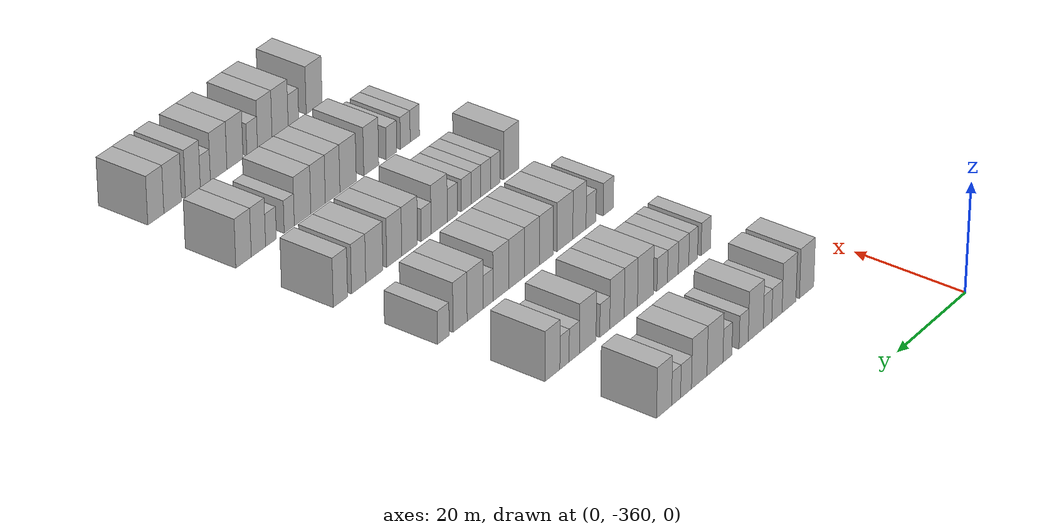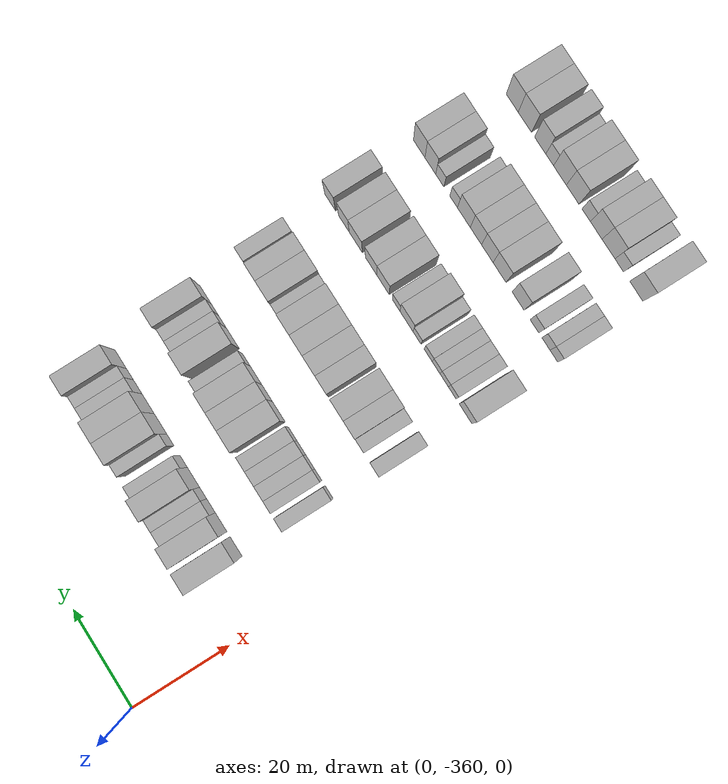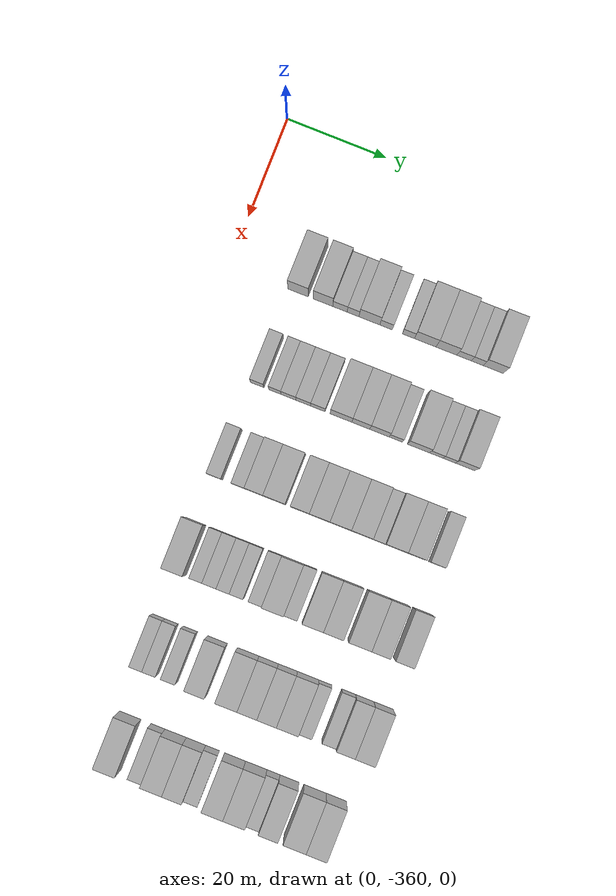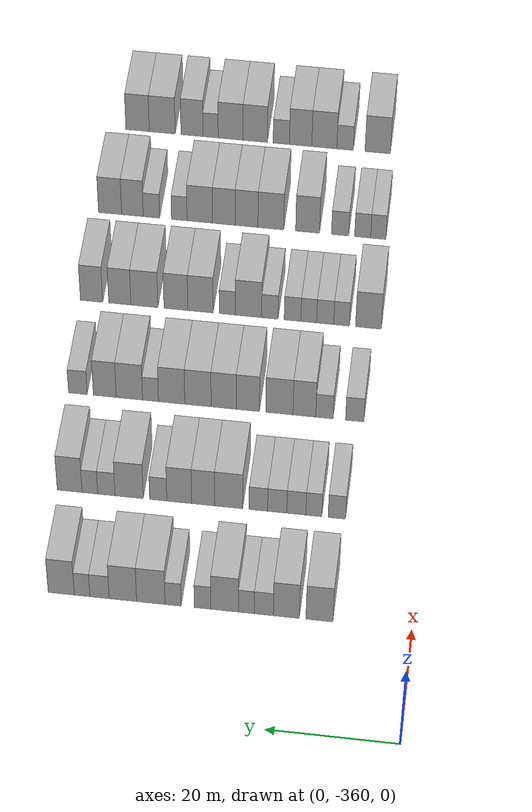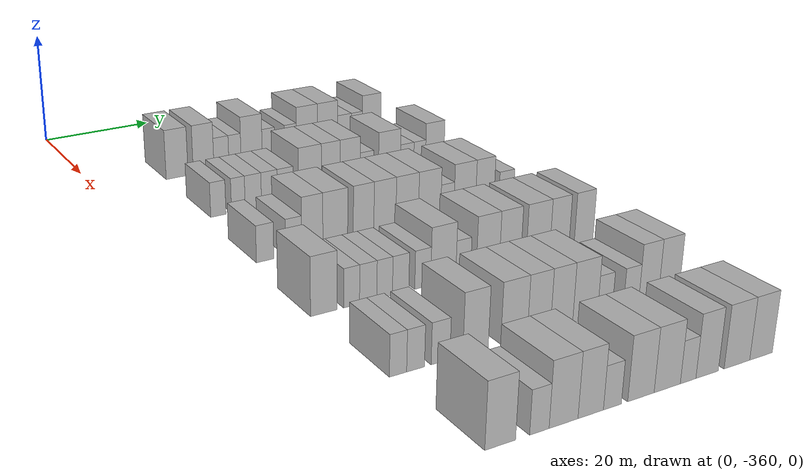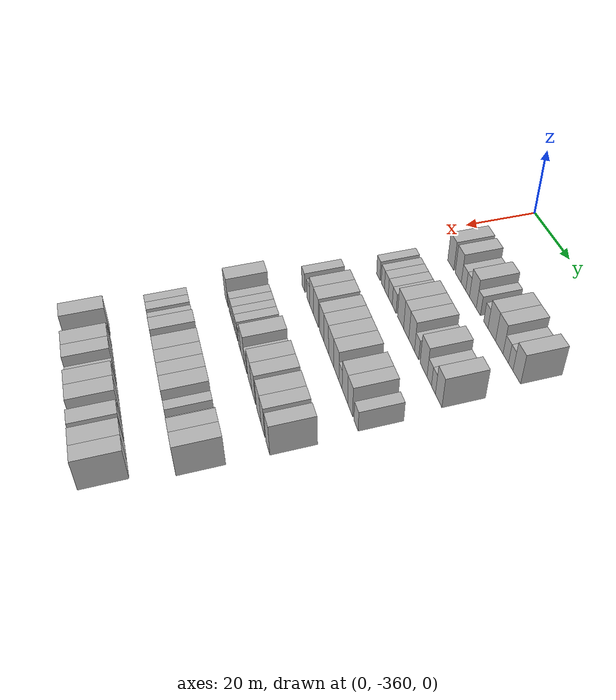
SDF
<sdf version="1.6">
 <world name="default">
  <model name="building_1">
   <static>1</static>
   <pose>25.0000 -345.9522 0 0.000000 0.000000 0.000000</pose>
   <link name="link">
    <pose>0 0 4.50 0 0 0</pose>
    <collision name="collision"><geometry><box><size>10.0000 4.0957 9.0000</size></box></geometry></collision>
    <visual name="visual">
     <cast_shadows>0</cast_shadows>
     <geometry><box><size>10.0000 4.0957 9.0000</size></box></geometry>
     <material>
      <script>
       <uri>model://HANNAS_wall/materials/scripts</uri>
       <uri>model://HANNAS_wall/materials/textures</uri>
       <name>vrc/HANNAS_wall</name>
      </script>
     </material>
    </visual>
   </link>
  </model>
  <model name="building_2">
   <static>1</static>
   <pose>25.0000 -340.9280 0 0.000000 0.000000 0.000000</pose>
   <link name="link">
    <pose>0 0 4.50 0 0 0</pose>
    <collision name="collision"><geometry><box><size>10.0000 3.9526 9.0000</size></box></geometry></collision>
    <visual name="visual">
     <cast_shadows>0</cast_shadows>
     <geometry><box><size>10.0000 3.9526 9.0000</size></box></geometry>
     <material>
      <script>
       <uri>model://HANNAS_wall/materials/scripts</uri>
       <uri>model://HANNAS_wall/materials/textures</uri>
       <name>vrc/HANNAS_wall</name>
      </script>
     </material>
    </visual>
   </link>
  </model>
  <model name="building_3">
   <static>1</static>
   <pose>25.0000 -337.5009 0 0.000000 0.000000 0.000000</pose>
   <link name="link">
    <pose>0 0 3.00 0 0 0</pose>
    <collision name="collision"><geometry><box><size>10.0000 2.9018 6.0000</size></box></geometry></collision>
    <visual name="visual">
     <cast_shadows>0</cast_shadows>
     <geometry><box><size>10.0000 2.9018 6.0000</size></box></geometry>
     <material>
      <script>
       <uri>model://HANNAS_wall/materials/scripts</uri>
       <uri>model://HANNAS_wall/materials/textures</uri>
       <name>vrc/HANNAS_wall</name>
      </script>
     </material>
    </visual>
   </link>
  </model>
  <model name="building_4">
   <static>1</static>
   <pose>25.0000 -334.8481 0 0.000000 0.000000 0.000000</pose>
   <link name="link">
    <pose>0 0 3.00 0 0 0</pose>
    <collision name="collision"><geometry><box><size>10.0000 2.4036 6.0000</size></box></geometry></collision>
    <visual name="visual">
     <cast_shadows>0</cast_shadows>
     <geometry><box><size>10.0000 2.4036 6.0000</size></box></geometry>
     <material>
      <script>
       <uri>model://HANNAS_wall/materials/scripts</uri>
       <uri>model://HANNAS_wall/materials/textures</uri>
       <name>vrc/HANNAS_wall</name>
      </script>
     </material>
    </visual>
   </link>
  </model>
  <model name="building_5">
   <static>1</static>
   <pose>25.0000 -331.5470 0 0.000000 0.000000 0.000000</pose>
   <link name="link">
    <pose>0 0 4.50 0 0 0</pose>
    <collision name="collision"><geometry><box><size>10.0000 4.1985 9.0000</size></box></geometry></collision>
    <visual name="visual">
     <cast_shadows>0</cast_shadows>
     <geometry><box><size>10.0000 4.1985 9.0000</size></box></geometry>
     <material>
      <script>
       <uri>model://HANNAS_wall/materials/scripts</uri>
       <uri>model://HANNAS_wall/materials/textures</uri>
       <name>vrc/HANNAS_wall</name>
      </script>
     </material>
    </visual>
   </link>
  </model>
  <model name="building_6">
   <static>1</static>
   <pose>25.0000 -328.1808 0 0.000000 0.000000 0.000000</pose>
   <link name="link">
    <pose>0 0 3.00 0 0 0</pose>
    <collision name="collision"><geometry><box><size>10.0000 2.5340 6.0000</size></box></geometry></collision>
    <visual name="visual">
     <cast_shadows>0</cast_shadows>
     <geometry><box><size>10.0000 2.5340 6.0000</size></box></geometry>
     <material>
      <script>
       <uri>model://HANNAS_wall/materials/scripts</uri>
       <uri>model://HANNAS_wall/materials/textures</uri>
       <name>vrc/HANNAS_wall</name>
      </script>
     </material>
    </visual>
   </link>
  </model>
  <model name="building_7">
   <static>1</static>
   <pose>25.0000 -323.6865 0 0.000000 0.000000 0.000000</pose>
   <link name="link">
    <pose>0 0 3.00 0 0 0</pose>
    <collision name="collision"><geometry><box><size>10.0000 2.4546 6.0000</size></box></geometry></collision>
    <visual name="visual">
     <cast_shadows>0</cast_shadows>
     <geometry><box><size>10.0000 2.4546 6.0000</size></box></geometry>
     <material>
      <script>
       <uri>model://HANNAS_wall/materials/scripts</uri>
       <uri>model://HANNAS_wall/materials/textures</uri>
       <name>vrc/HANNAS_wall</name>
      </script>
     </material>
    </visual>
   </link>
  </model>
  <model name="building_8">
   <static>1</static>
   <pose>25.0000 -320.2829 0 0.000000 0.000000 0.000000</pose>
   <link name="link">
    <pose>0 0 4.50 0 0 0</pose>
    <collision name="collision"><geometry><box><size>10.0000 4.3526 9.0000</size></box></geometry></collision>
    <visual name="visual">
     <cast_shadows>0</cast_shadows>
     <geometry><box><size>10.0000 4.3526 9.0000</size></box></geometry>
     <material>
      <script>
       <uri>model://HANNAS_wall/materials/scripts</uri>
       <uri>model://HANNAS_wall/materials/textures</uri>
       <name>vrc/HANNAS_wall</name>
      </script>
     </material>
    </visual>
   </link>
  </model>
  <model name="building_9">
   <static>1</static>
   <pose>25.0000 -316.0000 0 0.000000 0.000000 0.000000</pose>
   <link name="link">
    <pose>0 0 4.50 0 0 0</pose>
    <collision name="collision"><geometry><box><size>10.0000 4.2131 9.0000</size></box></geometry></collision>
    <visual name="visual">
     <cast_shadows>0</cast_shadows>
     <geometry><box><size>10.0000 4.2131 9.0000</size></box></geometry>
     <material>
      <script>
       <uri>model://HANNAS_wall/materials/scripts</uri>
       <uri>model://HANNAS_wall/materials/textures</uri>
       <name>vrc/HANNAS_wall</name>
      </script>
     </material>
    </visual>
   </link>
  </model>
  <model name="building_10">
   <static>1</static>
   <pose>25.0000 -312.4239 0 0.000000 0.000000 0.000000</pose>
   <link name="link">
    <pose>0 0 3.00 0 0 0</pose>
    <collision name="collision"><geometry><box><size>10.0000 2.9391 6.0000</size></box></geometry></collision>
    <visual name="visual">
     <cast_shadows>0</cast_shadows>
     <geometry><box><size>10.0000 2.9391 6.0000</size></box></geometry>
     <material>
      <script>
       <uri>model://HANNAS_wall/materials/scripts</uri>
       <uri>model://HANNAS_wall/materials/textures</uri>
       <name>vrc/HANNAS_wall</name>
      </script>
     </material>
    </visual>
   </link>
  </model>
  <model name="building_11">
   <static>1</static>
   <pose>25.0000 -309.7540 0 0.000000 0.000000 0.000000</pose>
   <link name="link">
    <pose>0 0 3.00 0 0 0</pose>
    <collision name="collision"><geometry><box><size>10.0000 2.4007 6.0000</size></box></geometry></collision>
    <visual name="visual">
     <cast_shadows>0</cast_shadows>
     <geometry><box><size>10.0000 2.4007 6.0000</size></box></geometry>
     <material>
      <script>
       <uri>model://HANNAS_wall/materials/scripts</uri>
       <uri>model://HANNAS_wall/materials/textures</uri>
       <name>vrc/HANNAS_wall</name>
      </script>
     </material>
    </visual>
   </link>
  </model>
  <model name="building_12">
   <static>1</static>
   <pose>25.0000 -306.5531 0 0.000000 0.000000 0.000000</pose>
   <link name="link">
    <pose>0 0 4.50 0 0 0</pose>
    <collision name="collision"><geometry><box><size>10.0000 4.0011 9.0000</size></box></geometry></collision>
    <visual name="visual">
     <cast_shadows>0</cast_shadows>
     <geometry><box><size>10.0000 4.0011 9.0000</size></box></geometry>
     <material>
      <script>
       <uri>model://HANNAS_wall/materials/scripts</uri>
       <uri>model://HANNAS_wall/materials/textures</uri>
       <name>vrc/HANNAS_wall</name>
      </script>
     </material>
    </visual>
   </link>
  </model>
  <model name="building_172">
   <static>1</static>
   <pose>44.0000 -346.6538 0 0.000000 0.000000 0.000000</pose>
   <link name="link">
    <pose>0 0 3.00 0 0 0</pose>
    <collision name="collision"><geometry><box><size>10.0000 2.6925 6.0000</size></box></geometry></collision>
    <visual name="visual">
     <cast_shadows>0</cast_shadows>
     <geometry><box><size>10.0000 2.6925 6.0000</size></box></geometry>
     <material>
      <script>
       <uri>model://HANNAS_wall/materials/scripts</uri>
       <uri>model://HANNAS_wall/materials/textures</uri>
       <name>vrc/HANNAS_wall</name>
      </script>
     </material>
    </visual>
   </link>
  </model>
  <model name="building_173">
   <static>1</static>
   <pose>44.0000 -343.0779 0 0.000000 0.000000 0.000000</pose>
   <link name="link">
    <pose>0 0 3.00 0 0 0</pose>
    <collision name="collision"><geometry><box><size>10.0000 2.4593 6.0000</size></box></geometry></collision>
    <visual name="visual">
     <cast_shadows>0</cast_shadows>
     <geometry><box><size>10.0000 2.4593 6.0000</size></box></geometry>
     <material>
      <script>
       <uri>model://HANNAS_wall/materials/scripts</uri>
       <uri>model://HANNAS_wall/materials/textures</uri>
       <name>vrc/HANNAS_wall</name>
      </script>
     </material>
    </visual>
   </link>
  </model>
  <model name="building_174">
   <static>1</static>
   <pose>44.0000 -340.3634 0 0.000000 0.000000 0.000000</pose>
   <link name="link">
    <pose>0 0 3.00 0 0 0</pose>
    <collision name="collision"><geometry><box><size>10.0000 2.9695 6.0000</size></box></geometry></collision>
    <visual name="visual">
     <cast_shadows>0</cast_shadows>
     <geometry><box><size>10.0000 2.9695 6.0000</size></box></geometry>
     <material>
      <script>
       <uri>model://HANNAS_wall/materials/scripts</uri>
       <uri>model://HANNAS_wall/materials/textures</uri>
       <name>vrc/HANNAS_wall</name>
      </script>
     </material>
    </visual>
   </link>
  </model>
  <model name="building_175">
   <static>1</static>
   <pose>44.0000 -337.3846 0 0.000000 0.000000 0.000000</pose>
   <link name="link">
    <pose>0 0 3.00 0 0 0</pose>
    <collision name="collision"><geometry><box><size>10.0000 2.9881 6.0000</size></box></geometry></collision>
    <visual name="visual">
     <cast_shadows>0</cast_shadows>
     <geometry><box><size>10.0000 2.9881 6.0000</size></box></geometry>
     <material>
      <script>
       <uri>model://HANNAS_wall/materials/scripts</uri>
       <uri>model://HANNAS_wall/materials/textures</uri>
       <name>vrc/HANNAS_wall</name>
      </script>
     </material>
    </visual>
   </link>
  </model>
  <model name="building_176">
   <static>1</static>
   <pose>44.0000 -334.4382 0 0.000000 0.000000 0.000000</pose>
   <link name="link">
    <pose>0 0 3.00 0 0 0</pose>
    <collision name="collision"><geometry><box><size>10.0000 2.9048 6.0000</size></box></geometry></collision>
    <visual name="visual">
     <cast_shadows>0</cast_shadows>
     <geometry><box><size>10.0000 2.9048 6.0000</size></box></geometry>
     <material>
      <script>
       <uri>model://HANNAS_wall/materials/scripts</uri>
       <uri>model://HANNAS_wall/materials/textures</uri>
       <name>vrc/HANNAS_wall</name>
      </script>
     </material>
    </visual>
   </link>
  </model>
  <model name="building_177">
   <static>1</static>
   <pose>44.0000 -329.8053 0 0.000000 0.000000 0.000000</pose>
   <link name="link">
    <pose>0 0 4.50 0 0 0</pose>
    <collision name="collision"><geometry><box><size>10.0000 4.3610 9.0000</size></box></geometry></collision>
    <visual name="visual">
     <cast_shadows>0</cast_shadows>
     <geometry><box><size>10.0000 4.3610 9.0000</size></box></geometry>
     <material>
      <script>
       <uri>model://HANNAS_wall/materials/scripts</uri>
       <uri>model://HANNAS_wall/materials/textures</uri>
       <name>vrc/HANNAS_wall</name>
      </script>
     </material>
    </visual>
   </link>
  </model>
  <model name="building_178">
   <static>1</static>
   <pose>44.0000 -325.8218 0 0.000000 0.000000 0.000000</pose>
   <link name="link">
    <pose>0 0 4.50 0 0 0</pose>
    <collision name="collision"><geometry><box><size>10.0000 3.6060 9.0000</size></box></geometry></collision>
    <visual name="visual">
     <cast_shadows>0</cast_shadows>
     <geometry><box><size>10.0000 3.6060 9.0000</size></box></geometry>
     <material>
      <script>
       <uri>model://HANNAS_wall/materials/scripts</uri>
       <uri>model://HANNAS_wall/materials/textures</uri>
       <name>vrc/HANNAS_wall</name>
      </script>
     </material>
    </visual>
   </link>
  </model>
  <model name="building_179">
   <static>1</static>
   <pose>44.0000 -322.0697 0 0.000000 0.000000 0.000000</pose>
   <link name="link">
    <pose>0 0 4.50 0 0 0</pose>
    <collision name="collision"><geometry><box><size>10.0000 3.8982 9.0000</size></box></geometry></collision>
    <visual name="visual">
     <cast_shadows>0</cast_shadows>
     <geometry><box><size>10.0000 3.8982 9.0000</size></box></geometry>
     <material>
      <script>
       <uri>model://HANNAS_wall/materials/scripts</uri>
       <uri>model://HANNAS_wall/materials/textures</uri>
       <name>vrc/HANNAS_wall</name>
      </script>
     </material>
    </visual>
   </link>
  </model>
  <model name="building_180">
   <static>1</static>
   <pose>44.0000 -318.7750 0 0.000000 0.000000 0.000000</pose>
   <link name="link">
    <pose>0 0 3.00 0 0 0</pose>
    <collision name="collision"><geometry><box><size>10.0000 2.6912 6.0000</size></box></geometry></collision>
    <visual name="visual">
     <cast_shadows>0</cast_shadows>
     <geometry><box><size>10.0000 2.6912 6.0000</size></box></geometry>
     <material>
      <script>
       <uri>model://HANNAS_wall/materials/scripts</uri>
       <uri>model://HANNAS_wall/materials/textures</uri>
       <name>vrc/HANNAS_wall</name>
      </script>
     </material>
    </visual>
   </link>
  </model>
  <model name="building_181">
   <static>1</static>
   <pose>44.0000 -314.2158 0 0.000000 0.000000 0.000000</pose>
   <link name="link">
    <pose>0 0 4.50 0 0 0</pose>
    <collision name="collision"><geometry><box><size>10.0000 4.4271 9.0000</size></box></geometry></collision>
    <visual name="visual">
     <cast_shadows>0</cast_shadows>
     <geometry><box><size>10.0000 4.4271 9.0000</size></box></geometry>
     <material>
      <script>
       <uri>model://HANNAS_wall/materials/scripts</uri>
       <uri>model://HANNAS_wall/materials/textures</uri>
       <name>vrc/HANNAS_wall</name>
      </script>
     </material>
    </visual>
   </link>
  </model>
  <model name="building_182">
   <static>1</static>
   <pose>44.0000 -310.6320 0 0.000000 0.000000 0.000000</pose>
   <link name="link">
    <pose>0 0 3.00 0 0 0</pose>
    <collision name="collision"><geometry><box><size>10.0000 2.7405 6.0000</size></box></geometry></collision>
    <visual name="visual">
     <cast_shadows>0</cast_shadows>
     <geometry><box><size>10.0000 2.7405 6.0000</size></box></geometry>
     <material>
      <script>
       <uri>model://HANNAS_wall/materials/scripts</uri>
       <uri>model://HANNAS_wall/materials/textures</uri>
       <name>vrc/HANNAS_wall</name>
      </script>
     </material>
    </visual>
   </link>
  </model>
  <model name="building_183">
   <static>1</static>
   <pose>44.0000 -308.0383 0 0.000000 0.000000 0.000000</pose>
   <link name="link">
    <pose>0 0 3.00 0 0 0</pose>
    <collision name="collision"><geometry><box><size>10.0000 2.4469 6.0000</size></box></geometry></collision>
    <visual name="visual">
     <cast_shadows>0</cast_shadows>
     <geometry><box><size>10.0000 2.4469 6.0000</size></box></geometry>
     <material>
      <script>
       <uri>model://HANNAS_wall/materials/scripts</uri>
       <uri>model://HANNAS_wall/materials/textures</uri>
       <name>vrc/HANNAS_wall</name>
      </script>
     </material>
    </visual>
   </link>
  </model>
  <model name="building_184">
   <static>1</static>
   <pose>44.0000 -304.8667 0 0.000000 0.000000 0.000000</pose>
   <link name="link">
    <pose>0 0 4.50 0 0 0</pose>
    <collision name="collision"><geometry><box><size>10.0000 3.8963 9.0000</size></box></geometry></collision>
    <visual name="visual">
     <cast_shadows>0</cast_shadows>
     <geometry><box><size>10.0000 3.8963 9.0000</size></box></geometry>
     <material>
      <script>
       <uri>model://HANNAS_wall/materials/scripts</uri>
       <uri>model://HANNAS_wall/materials/textures</uri>
       <name>vrc/HANNAS_wall</name>
      </script>
     </material>
    </visual>
   </link>
  </model>
  <model name="building_344">
   <static>1</static>
   <pose>63.0000 -347.5526 0 0.000000 0.000000 0.000000</pose>
   <link name="link">
    <pose>0 0 3.00 0 0 0</pose>
    <collision name="collision"><geometry><box><size>10.0000 2.8949 6.0000</size></box></geometry></collision>
    <visual name="visual">
     <cast_shadows>0</cast_shadows>
     <geometry><box><size>10.0000 2.8949 6.0000</size></box></geometry>
     <material>
      <script>
       <uri>model://HANNAS_wall/materials/scripts</uri>
       <uri>model://HANNAS_wall/materials/textures</uri>
       <name>vrc/HANNAS_wall</name>
      </script>
     </material>
    </visual>
   </link>
  </model>
  <model name="building_345">
   <static>1</static>
   <pose>63.0000 -342.7315 0 0.000000 0.000000 0.000000</pose>
   <link name="link">
    <pose>0 0 3.00 0 0 0</pose>
    <collision name="collision"><geometry><box><size>10.0000 2.7472 6.0000</size></box></geometry></collision>
    <visual name="visual">
     <cast_shadows>0</cast_shadows>
     <geometry><box><size>10.0000 2.7472 6.0000</size></box></geometry>
     <material>
      <script>
       <uri>model://HANNAS_wall/materials/scripts</uri>
       <uri>model://HANNAS_wall/materials/textures</uri>
       <name>vrc/HANNAS_wall</name>
      </script>
     </material>
    </visual>
   </link>
  </model>
  <model name="building_346">
   <static>1</static>
   <pose>63.0000 -339.5363 0 0.000000 0.000000 0.000000</pose>
   <link name="link">
    <pose>0 0 4.50 0 0 0</pose>
    <collision name="collision"><geometry><box><size>10.0000 3.6432 9.0000</size></box></geometry></collision>
    <visual name="visual">
     <cast_shadows>0</cast_shadows>
     <geometry><box><size>10.0000 3.6432 9.0000</size></box></geometry>
     <material>
      <script>
       <uri>model://HANNAS_wall/materials/scripts</uri>
       <uri>model://HANNAS_wall/materials/textures</uri>
       <name>vrc/HANNAS_wall</name>
      </script>
     </material>
    </visual>
   </link>
  </model>
  <model name="building_347">
   <static>1</static>
   <pose>63.0000 -335.5387 0 0.000000 0.000000 0.000000</pose>
   <link name="link">
    <pose>0 0 4.50 0 0 0</pose>
    <collision name="collision"><geometry><box><size>10.0000 4.3518 9.0000</size></box></geometry></collision>
    <visual name="visual">
     <cast_shadows>0</cast_shadows>
     <geometry><box><size>10.0000 4.3518 9.0000</size></box></geometry>
     <material>
      <script>
       <uri>model://HANNAS_wall/materials/scripts</uri>
       <uri>model://HANNAS_wall/materials/textures</uri>
       <name>vrc/HANNAS_wall</name>
      </script>
     </material>
    </visual>
   </link>
  </model>
  <model name="building_348">
   <static>1</static>
   <pose>63.0000 -330.5095 0 0.000000 0.000000 0.000000</pose>
   <link name="link">
    <pose>0 0 4.50 0 0 0</pose>
    <collision name="collision"><geometry><box><size>10.0000 3.7065 9.0000</size></box></geometry></collision>
    <visual name="visual">
     <cast_shadows>0</cast_shadows>
     <geometry><box><size>10.0000 3.7065 9.0000</size></box></geometry>
     <material>
      <script>
       <uri>model://HANNAS_wall/materials/scripts</uri>
       <uri>model://HANNAS_wall/materials/textures</uri>
       <name>vrc/HANNAS_wall</name>
      </script>
     </material>
    </visual>
   </link>
  </model>
  <model name="building_349">
   <static>1</static>
   <pose>63.0000 -326.6378 0 0.000000 0.000000 0.000000</pose>
   <link name="link">
    <pose>0 0 4.50 0 0 0</pose>
    <collision name="collision"><geometry><box><size>10.0000 4.0371 9.0000</size></box></geometry></collision>
    <visual name="visual">
     <cast_shadows>0</cast_shadows>
     <geometry><box><size>10.0000 4.0371 9.0000</size></box></geometry>
     <material>
      <script>
       <uri>model://HANNAS_wall/materials/scripts</uri>
       <uri>model://HANNAS_wall/materials/textures</uri>
       <name>vrc/HANNAS_wall</name>
      </script>
     </material>
    </visual>
   </link>
  </model>
  <model name="building_350">
   <static>1</static>
   <pose>63.0000 -322.5171 0 0.000000 0.000000 0.000000</pose>
   <link name="link">
    <pose>0 0 4.50 0 0 0</pose>
    <collision name="collision"><geometry><box><size>10.0000 4.2042 9.0000</size></box></geometry></collision>
    <visual name="visual">
     <cast_shadows>0</cast_shadows>
     <geometry><box><size>10.0000 4.2042 9.0000</size></box></geometry>
     <material>
      <script>
       <uri>model://HANNAS_wall/materials/scripts</uri>
       <uri>model://HANNAS_wall/materials/textures</uri>
       <name>vrc/HANNAS_wall</name>
      </script>
     </material>
    </visual>
   </link>
  </model>
  <model name="building_351">
   <static>1</static>
   <pose>63.0000 -318.2964 0 0.000000 0.000000 0.000000</pose>
   <link name="link">
    <pose>0 0 4.50 0 0 0</pose>
    <collision name="collision"><geometry><box><size>10.0000 4.2372 9.0000</size></box></geometry></collision>
    <visual name="visual">
     <cast_shadows>0</cast_shadows>
     <geometry><box><size>10.0000 4.2372 9.0000</size></box></geometry>
     <material>
      <script>
       <uri>model://HANNAS_wall/materials/scripts</uri>
       <uri>model://HANNAS_wall/materials/textures</uri>
       <name>vrc/HANNAS_wall</name>
      </script>
     </material>
    </visual>
   </link>
  </model>
  <model name="building_352">
   <static>1</static>
   <pose>63.0000 -314.9052 0 0.000000 0.000000 0.000000</pose>
   <link name="link">
    <pose>0 0 3.00 0 0 0</pose>
    <collision name="collision"><geometry><box><size>10.0000 2.5452 6.0000</size></box></geometry></collision>
    <visual name="visual">
     <cast_shadows>0</cast_shadows>
     <geometry><box><size>10.0000 2.5452 6.0000</size></box></geometry>
     <material>
      <script>
       <uri>model://HANNAS_wall/materials/scripts</uri>
       <uri>model://HANNAS_wall/materials/textures</uri>
       <name>vrc/HANNAS_wall</name>
      </script>
     </material>
    </visual>
   </link>
  </model>
  <model name="building_353">
   <static>1</static>
   <pose>63.0000 -311.5111 0 0.000000 0.000000 0.000000</pose>
   <link name="link">
    <pose>0 0 4.50 0 0 0</pose>
    <collision name="collision"><geometry><box><size>10.0000 4.2429 9.0000</size></box></geometry></collision>
    <visual name="visual">
     <cast_shadows>0</cast_shadows>
     <geometry><box><size>10.0000 4.2429 9.0000</size></box></geometry>
     <material>
      <script>
       <uri>model://HANNAS_wall/materials/scripts</uri>
       <uri>model://HANNAS_wall/materials/textures</uri>
       <name>vrc/HANNAS_wall</name>
      </script>
     </material>
    </visual>
   </link>
  </model>
  <model name="building_354">
   <static>1</static>
   <pose>63.0000 -307.5528 0 0.000000 0.000000 0.000000</pose>
   <link name="link">
    <pose>0 0 4.50 0 0 0</pose>
    <collision name="collision"><geometry><box><size>10.0000 3.6737 9.0000</size></box></geometry></collision>
    <visual name="visual">
     <cast_shadows>0</cast_shadows>
     <geometry><box><size>10.0000 3.6737 9.0000</size></box></geometry>
     <material>
      <script>
       <uri>model://HANNAS_wall/materials/scripts</uri>
       <uri>model://HANNAS_wall/materials/textures</uri>
       <name>vrc/HANNAS_wall</name>
      </script>
     </material>
    </visual>
   </link>
  </model>
  <model name="building_355">
   <static>1</static>
   <pose>63.0000 -303.2195 0 0.000000 0.000000 0.000000</pose>
   <link name="link">
    <pose>0 0 3.00 0 0 0</pose>
    <collision name="collision"><geometry><box><size>10.0000 2.9928 6.0000</size></box></geometry></collision>
    <visual name="visual">
     <cast_shadows>0</cast_shadows>
     <geometry><box><size>10.0000 2.9928 6.0000</size></box></geometry>
     <material>
      <script>
       <uri>model://HANNAS_wall/materials/scripts</uri>
       <uri>model://HANNAS_wall/materials/textures</uri>
       <name>vrc/HANNAS_wall</name>
      </script>
     </material>
    </visual>
   </link>
  </model>
  <model name="building_511">
   <static>1</static>
   <pose>82.0000 -347.9103 0 0.000000 0.000000 0.000000</pose>
   <link name="link">
    <pose>0 0 4.50 0 0 0</pose>
    <collision name="collision"><geometry><box><size>10.0000 4.1794 9.0000</size></box></geometry></collision>
    <visual name="visual">
     <cast_shadows>0</cast_shadows>
     <geometry><box><size>10.0000 4.1794 9.0000</size></box></geometry>
     <material>
      <script>
       <uri>model://HANNAS_wall/materials/scripts</uri>
       <uri>model://HANNAS_wall/materials/textures</uri>
       <name>vrc/HANNAS_wall</name>
      </script>
     </material>
    </visual>
   </link>
  </model>
  <model name="building_512">
   <static>1</static>
   <pose>82.0000 -343.5445 0 0.000000 0.000000 0.000000</pose>
   <link name="link">
    <pose>0 0 3.00 0 0 0</pose>
    <collision name="collision"><geometry><box><size>10.0000 2.5523 6.0000</size></box></geometry></collision>
    <visual name="visual">
     <cast_shadows>0</cast_shadows>
     <geometry><box><size>10.0000 2.5523 6.0000</size></box></geometry>
     <material>
      <script>
       <uri>model://HANNAS_wall/materials/scripts</uri>
       <uri>model://HANNAS_wall/materials/textures</uri>
       <name>vrc/HANNAS_wall</name>
      </script>
     </material>
    </visual>
   </link>
  </model>
  <model name="building_513">
   <static>1</static>
   <pose>82.0000 -340.8674 0 0.000000 0.000000 0.000000</pose>
   <link name="link">
    <pose>0 0 3.00 0 0 0</pose>
    <collision name="collision"><geometry><box><size>10.0000 2.8019 6.0000</size></box></geometry></collision>
    <visual name="visual">
     <cast_shadows>0</cast_shadows>
     <geometry><box><size>10.0000 2.8019 6.0000</size></box></geometry>
     <material>
      <script>
       <uri>model://HANNAS_wall/materials/scripts</uri>
       <uri>model://HANNAS_wall/materials/textures</uri>
       <name>vrc/HANNAS_wall</name>
      </script>
     </material>
    </visual>
   </link>
  </model>
  <model name="building_514">
   <static>1</static>
   <pose>82.0000 -338.1807 0 0.000000 0.000000 0.000000</pose>
   <link name="link">
    <pose>0 0 3.00 0 0 0</pose>
    <collision name="collision"><geometry><box><size>10.0000 2.5714 6.0000</size></box></geometry></collision>
    <visual name="visual">
     <cast_shadows>0</cast_shadows>
     <geometry><box><size>10.0000 2.5714 6.0000</size></box></geometry>
     <material>
      <script>
       <uri>model://HANNAS_wall/materials/scripts</uri>
       <uri>model://HANNAS_wall/materials/textures</uri>
       <name>vrc/HANNAS_wall</name>
      </script>
     </material>
    </visual>
   </link>
  </model>
  <model name="building_515">
   <static>1</static>
   <pose>82.0000 -335.5349 0 0.000000 0.000000 0.000000</pose>
   <link name="link">
    <pose>0 0 3.00 0 0 0</pose>
    <collision name="collision"><geometry><box><size>10.0000 2.7200 6.0000</size></box></geometry></collision>
    <visual name="visual">
     <cast_shadows>0</cast_shadows>
     <geometry><box><size>10.0000 2.7200 6.0000</size></box></geometry>
     <material>
      <script>
       <uri>model://HANNAS_wall/materials/scripts</uri>
       <uri>model://HANNAS_wall/materials/textures</uri>
       <name>vrc/HANNAS_wall</name>
      </script>
     </material>
    </visual>
   </link>
  </model>
  <model name="building_516">
   <static>1</static>
   <pose>82.0000 -331.8255 0 0.000000 0.000000 0.000000</pose>
   <link name="link">
    <pose>0 0 3.00 0 0 0</pose>
    <collision name="collision"><geometry><box><size>10.0000 2.6989 6.0000</size></box></geometry></collision>
    <visual name="visual">
     <cast_shadows>0</cast_shadows>
     <geometry><box><size>10.0000 2.6989 6.0000</size></box></geometry>
     <material>
      <script>
       <uri>model://HANNAS_wall/materials/scripts</uri>
       <uri>model://HANNAS_wall/materials/textures</uri>
       <name>vrc/HANNAS_wall</name>
      </script>
     </material>
    </visual>
   </link>
  </model>
  <model name="building_517">
   <static>1</static>
   <pose>82.0000 -328.3080 0 0.000000 0.000000 0.000000</pose>
   <link name="link">
    <pose>0 0 4.50 0 0 0</pose>
    <collision name="collision"><geometry><box><size>10.0000 4.3362 9.0000</size></box></geometry></collision>
    <visual name="visual">
     <cast_shadows>0</cast_shadows>
     <geometry><box><size>10.0000 4.3362 9.0000</size></box></geometry>
     <material>
      <script>
       <uri>model://HANNAS_wall/materials/scripts</uri>
       <uri>model://HANNAS_wall/materials/textures</uri>
       <name>vrc/HANNAS_wall</name>
      </script>
     </material>
    </visual>
   </link>
  </model>
  <model name="building_518">
   <static>1</static>
   <pose>82.0000 -324.8363 0 0.000000 0.000000 0.000000</pose>
   <link name="link">
    <pose>0 0 3.00 0 0 0</pose>
    <collision name="collision"><geometry><box><size>10.0000 2.6071 6.0000</size></box></geometry></collision>
    <visual name="visual">
     <cast_shadows>0</cast_shadows>
     <geometry><box><size>10.0000 2.6071 6.0000</size></box></geometry>
     <material>
      <script>
       <uri>model://HANNAS_wall/materials/scripts</uri>
       <uri>model://HANNAS_wall/materials/textures</uri>
       <name>vrc/HANNAS_wall</name>
      </script>
     </material>
    </visual>
   </link>
  </model>
  <model name="building_519">
   <static>1</static>
   <pose>82.0000 -320.4576 0 0.000000 0.000000 0.000000</pose>
   <link name="link">
    <pose>0 0 4.50 0 0 0</pose>
    <collision name="collision"><geometry><box><size>10.0000 4.1503 9.0000</size></box></geometry></collision>
    <visual name="visual">
     <cast_shadows>0</cast_shadows>
     <geometry><box><size>10.0000 4.1503 9.0000</size></box></geometry>
     <material>
      <script>
       <uri>model://HANNAS_wall/materials/scripts</uri>
       <uri>model://HANNAS_wall/materials/textures</uri>
       <name>vrc/HANNAS_wall</name>
      </script>
     </material>
    </visual>
   </link>
  </model>
  <model name="building_520">
   <static>1</static>
   <pose>82.0000 -316.4218 0 0.000000 0.000000 0.000000</pose>
   <link name="link">
    <pose>0 0 4.50 0 0 0</pose>
    <collision name="collision"><geometry><box><size>10.0000 3.9213 9.0000</size></box></geometry></collision>
    <visual name="visual">
     <cast_shadows>0</cast_shadows>
     <geometry><box><size>10.0000 3.9213 9.0000</size></box></geometry>
     <material>
      <script>
       <uri>model://HANNAS_wall/materials/scripts</uri>
       <uri>model://HANNAS_wall/materials/textures</uri>
       <name>vrc/HANNAS_wall</name>
      </script>
     </material>
    </visual>
   </link>
  </model>
  <model name="building_521">
   <static>1</static>
   <pose>82.0000 -311.2382 0 0.000000 0.000000 0.000000</pose>
   <link name="link">
    <pose>0 0 4.50 0 0 0</pose>
    <collision name="collision"><geometry><box><size>10.0000 4.4457 9.0000</size></box></geometry></collision>
    <visual name="visual">
     <cast_shadows>0</cast_shadows>
     <geometry><box><size>10.0000 4.4457 9.0000</size></box></geometry>
     <material>
      <script>
       <uri>model://HANNAS_wall/materials/scripts</uri>
       <uri>model://HANNAS_wall/materials/textures</uri>
       <name>vrc/HANNAS_wall</name>
      </script>
     </material>
    </visual>
   </link>
  </model>
  <model name="building_522">
   <static>1</static>
   <pose>82.0000 -307.1888 0 0.000000 0.000000 0.000000</pose>
   <link name="link">
    <pose>0 0 4.50 0 0 0</pose>
    <collision name="collision"><geometry><box><size>10.0000 3.6533 9.0000</size></box></geometry></collision>
    <visual name="visual">
     <cast_shadows>0</cast_shadows>
     <geometry><box><size>10.0000 3.6533 9.0000</size></box></geometry>
     <material>
      <script>
       <uri>model://HANNAS_wall/materials/scripts</uri>
       <uri>model://HANNAS_wall/materials/textures</uri>
       <name>vrc/HANNAS_wall</name>
      </script>
     </material>
    </visual>
   </link>
  </model>
  <model name="building_523">
   <static>1</static>
   <pose>82.0000 -302.5298 0 0.000000 0.000000 0.000000</pose>
   <link name="link">
    <pose>0 0 4.50 0 0 0</pose>
    <collision name="collision"><geometry><box><size>10.0000 3.6647 9.0000</size></box></geometry></collision>
    <visual name="visual">
     <cast_shadows>0</cast_shadows>
     <geometry><box><size>10.0000 3.6647 9.0000</size></box></geometry>
     <material>
      <script>
       <uri>model://HANNAS_wall/materials/scripts</uri>
       <uri>model://HANNAS_wall/materials/textures</uri>
       <name>vrc/HANNAS_wall</name>
      </script>
     </material>
    </visual>
   </link>
  </model>
  <model name="building_677">
   <static>1</static>
   <pose>101.0000 -347.7310 0 0.000000 0.000000 0.000000</pose>
   <link name="link">
    <pose>0 0 3.00 0 0 0</pose>
    <collision name="collision"><geometry><box><size>10.0000 2.5380 6.0000</size></box></geometry></collision>
    <visual name="visual">
     <cast_shadows>0</cast_shadows>
     <geometry><box><size>10.0000 2.5380 6.0000</size></box></geometry>
     <material>
      <script>
       <uri>model://HANNAS_wall/materials/scripts</uri>
       <uri>model://HANNAS_wall/materials/textures</uri>
       <name>vrc/HANNAS_wall</name>
      </script>
     </material>
    </visual>
   </link>
  </model>
  <model name="building_678">
   <static>1</static>
   <pose>101.0000 -345.1303 0 0.000000 0.000000 0.000000</pose>
   <link name="link">
    <pose>0 0 3.00 0 0 0</pose>
    <collision name="collision"><geometry><box><size>10.0000 2.6634 6.0000</size></box></geometry></collision>
    <visual name="visual">
     <cast_shadows>0</cast_shadows>
     <geometry><box><size>10.0000 2.6634 6.0000</size></box></geometry>
     <material>
      <script>
       <uri>model://HANNAS_wall/materials/scripts</uri>
       <uri>model://HANNAS_wall/materials/textures</uri>
       <name>vrc/HANNAS_wall</name>
      </script>
     </material>
    </visual>
   </link>
  </model>
  <model name="building_679">
   <static>1</static>
   <pose>101.0000 -341.3680 0 0.000000 0.000000 0.000000</pose>
   <link name="link">
    <pose>0 0 3.00 0 0 0</pose>
    <collision name="collision"><geometry><box><size>10.0000 2.8610 6.0000</size></box></geometry></collision>
    <visual name="visual">
     <cast_shadows>0</cast_shadows>
     <geometry><box><size>10.0000 2.8610 6.0000</size></box></geometry>
     <material>
      <script>
       <uri>model://HANNAS_wall/materials/scripts</uri>
       <uri>model://HANNAS_wall/materials/textures</uri>
       <name>vrc/HANNAS_wall</name>
      </script>
     </material>
    </visual>
   </link>
  </model>
  <model name="building_680">
   <static>1</static>
   <pose>101.0000 -335.9423 0 0.000000 0.000000 0.000000</pose>
   <link name="link">
    <pose>0 0 4.50 0 0 0</pose>
    <collision name="collision"><geometry><box><size>10.0000 3.9905 9.0000</size></box></geometry></collision>
    <visual name="visual">
     <cast_shadows>0</cast_shadows>
     <geometry><box><size>10.0000 3.9905 9.0000</size></box></geometry>
     <material>
      <script>
       <uri>model://HANNAS_wall/materials/scripts</uri>
       <uri>model://HANNAS_wall/materials/textures</uri>
       <name>vrc/HANNAS_wall</name>
      </script>
     </material>
    </visual>
   </link>
  </model>
  <model name="building_681">
   <static>1</static>
   <pose>101.0000 -329.7854 0 0.000000 0.000000 0.000000</pose>
   <link name="link">
    <pose>0 0 4.50 0 0 0</pose>
    <collision name="collision"><geometry><box><size>10.0000 4.3232 9.0000</size></box></geometry></collision>
    <visual name="visual">
     <cast_shadows>0</cast_shadows>
     <geometry><box><size>10.0000 4.3232 9.0000</size></box></geometry>
     <material>
      <script>
       <uri>model://HANNAS_wall/materials/scripts</uri>
       <uri>model://HANNAS_wall/materials/textures</uri>
       <name>vrc/HANNAS_wall</name>
      </script>
     </material>
    </visual>
   </link>
  </model>
  <model name="building_682">
   <static>1</static>
   <pose>101.0000 -325.7043 0 0.000000 0.000000 0.000000</pose>
   <link name="link">
    <pose>0 0 4.50 0 0 0</pose>
    <collision name="collision"><geometry><box><size>10.0000 3.8390 9.0000</size></box></geometry></collision>
    <visual name="visual">
     <cast_shadows>0</cast_shadows>
     <geometry><box><size>10.0000 3.8390 9.0000</size></box></geometry>
     <material>
      <script>
       <uri>model://HANNAS_wall/materials/scripts</uri>
       <uri>model://HANNAS_wall/materials/textures</uri>
       <name>vrc/HANNAS_wall</name>
      </script>
     </material>
    </visual>
   </link>
  </model>
  <model name="building_683">
   <static>1</static>
   <pose>101.0000 -321.8954 0 0.000000 0.000000 0.000000</pose>
   <link name="link">
    <pose>0 0 4.50 0 0 0</pose>
    <collision name="collision"><geometry><box><size>10.0000 3.7787 9.0000</size></box></geometry></collision>
    <visual name="visual">
     <cast_shadows>0</cast_shadows>
     <geometry><box><size>10.0000 3.7787 9.0000</size></box></geometry>
     <material>
      <script>
       <uri>model://HANNAS_wall/materials/scripts</uri>
       <uri>model://HANNAS_wall/materials/textures</uri>
       <name>vrc/HANNAS_wall</name>
      </script>
     </material>
    </visual>
   </link>
  </model>
  <model name="building_684">
   <static>1</static>
   <pose>101.0000 -317.8632 0 0.000000 0.000000 0.000000</pose>
   <link name="link">
    <pose>0 0 4.50 0 0 0</pose>
    <collision name="collision"><geometry><box><size>10.0000 4.2858 9.0000</size></box></geometry></collision>
    <visual name="visual">
     <cast_shadows>0</cast_shadows>
     <geometry><box><size>10.0000 4.2858 9.0000</size></box></geometry>
     <material>
      <script>
       <uri>model://HANNAS_wall/materials/scripts</uri>
       <uri>model://HANNAS_wall/materials/textures</uri>
       <name>vrc/HANNAS_wall</name>
      </script>
     </material>
    </visual>
   </link>
  </model>
  <model name="building_685">
   <static>1</static>
   <pose>101.0000 -314.4171 0 0.000000 0.000000 0.000000</pose>
   <link name="link">
    <pose>0 0 3.00 0 0 0</pose>
    <collision name="collision"><geometry><box><size>10.0000 2.6063 6.0000</size></box></geometry></collision>
    <visual name="visual">
     <cast_shadows>0</cast_shadows>
     <geometry><box><size>10.0000 2.6063 6.0000</size></box></geometry>
     <material>
      <script>
       <uri>model://HANNAS_wall/materials/scripts</uri>
       <uri>model://HANNAS_wall/materials/textures</uri>
       <name>vrc/HANNAS_wall</name>
      </script>
     </material>
    </visual>
   </link>
  </model>
  <model name="building_686">
   <static>1</static>
   <pose>101.0000 -309.7353 0 0.000000 0.000000 0.000000</pose>
   <link name="link">
    <pose>0 0 3.00 0 0 0</pose>
    <collision name="collision"><geometry><box><size>10.0000 2.7573 6.0000</size></box></geometry></collision>
    <visual name="visual">
     <cast_shadows>0</cast_shadows>
     <geometry><box><size>10.0000 2.7573 6.0000</size></box></geometry>
     <material>
      <script>
       <uri>model://HANNAS_wall/materials/scripts</uri>
       <uri>model://HANNAS_wall/materials/textures</uri>
       <name>vrc/HANNAS_wall</name>
      </script>
     </material>
    </visual>
   </link>
  </model>
  <model name="building_687">
   <static>1</static>
   <pose>101.0000 -306.5401 0 0.000000 0.000000 0.000000</pose>
   <link name="link">
    <pose>0 0 4.50 0 0 0</pose>
    <collision name="collision"><geometry><box><size>10.0000 3.6329 9.0000</size></box></geometry></collision>
    <visual name="visual">
     <cast_shadows>0</cast_shadows>
     <geometry><box><size>10.0000 3.6329 9.0000</size></box></geometry>
     <material>
      <script>
       <uri>model://HANNAS_wall/materials/scripts</uri>
       <uri>model://HANNAS_wall/materials/textures</uri>
       <name>vrc/HANNAS_wall</name>
      </script>
     </material>
    </visual>
   </link>
  </model>
  <model name="building_688">
   <static>1</static>
   <pose>101.0000 -302.7738 0 0.000000 0.000000 0.000000</pose>
   <link name="link">
    <pose>0 0 4.50 0 0 0</pose>
    <collision name="collision"><geometry><box><size>10.0000 3.8997 9.0000</size></box></geometry></collision>
    <visual name="visual">
     <cast_shadows>0</cast_shadows>
     <geometry><box><size>10.0000 3.8997 9.0000</size></box></geometry>
     <material>
      <script>
       <uri>model://HANNAS_wall/materials/scripts</uri>
       <uri>model://HANNAS_wall/materials/textures</uri>
       <name>vrc/HANNAS_wall</name>
      </script>
     </material>
    </visual>
   </link>
  </model>
  <model name="building_854">
   <static>1</static>
   <pose>120.0000 -345.8482 0 0.000000 0.000000 0.000000</pose>
   <link name="link">
    <pose>0 0 4.50 0 0 0</pose>
    <collision name="collision"><geometry><box><size>10.0000 4.3037 9.0000</size></box></geometry></collision>
    <visual name="visual">
     <cast_shadows>0</cast_shadows>
     <geometry><box><size>10.0000 4.3037 9.0000</size></box></geometry>
     <material>
      <script>
       <uri>model://HANNAS_wall/materials/scripts</uri>
       <uri>model://HANNAS_wall/materials/textures</uri>
       <name>vrc/HANNAS_wall</name>
      </script>
     </material>
    </visual>
   </link>
  </model>
  <model name="building_855">
   <static>1</static>
   <pose>120.0000 -340.2878 0 0.000000 0.000000 0.000000</pose>
   <link name="link">
    <pose>0 0 3.00 0 0 0</pose>
    <collision name="collision"><geometry><box><size>10.0000 2.8171 6.0000</size></box></geometry></collision>
    <visual name="visual">
     <cast_shadows>0</cast_shadows>
     <geometry><box><size>10.0000 2.8171 6.0000</size></box></geometry>
     <material>
      <script>
       <uri>model://HANNAS_wall/materials/scripts</uri>
       <uri>model://HANNAS_wall/materials/textures</uri>
       <name>vrc/HANNAS_wall</name>
      </script>
     </material>
    </visual>
   </link>
  </model>
  <model name="building_856">
   <static>1</static>
   <pose>120.0000 -336.7462 0 0.000000 0.000000 0.000000</pose>
   <link name="link">
    <pose>0 0 4.50 0 0 0</pose>
    <collision name="collision"><geometry><box><size>10.0000 4.2660 9.0000</size></box></geometry></collision>
    <visual name="visual">
     <cast_shadows>0</cast_shadows>
     <geometry><box><size>10.0000 4.2660 9.0000</size></box></geometry>
     <material>
      <script>
       <uri>model://HANNAS_wall/materials/scripts</uri>
       <uri>model://HANNAS_wall/materials/textures</uri>
       <name>vrc/HANNAS_wall</name>
      </script>
     </material>
    </visual>
   </link>
  </model>
  <model name="building_857">
   <static>1</static>
   <pose>120.0000 -332.6874 0 0.000000 0.000000 0.000000</pose>
   <link name="link">
    <pose>0 0 4.50 0 0 0</pose>
    <collision name="collision"><geometry><box><size>10.0000 3.8516 9.0000</size></box></geometry></collision>
    <visual name="visual">
     <cast_shadows>0</cast_shadows>
     <geometry><box><size>10.0000 3.8516 9.0000</size></box></geometry>
     <material>
      <script>
       <uri>model://HANNAS_wall/materials/scripts</uri>
       <uri>model://HANNAS_wall/materials/textures</uri>
       <name>vrc/HANNAS_wall</name>
      </script>
     </material>
    </visual>
   </link>
  </model>
  <model name="building_858">
   <static>1</static>
   <pose>120.0000 -329.3778 0 0.000000 0.000000 0.000000</pose>
   <link name="link">
    <pose>0 0 3.00 0 0 0</pose>
    <collision name="collision"><geometry><box><size>10.0000 2.7676 6.0000</size></box></geometry></collision>
    <visual name="visual">
     <cast_shadows>0</cast_shadows>
     <geometry><box><size>10.0000 2.7676 6.0000</size></box></geometry>
     <material>
      <script>
       <uri>model://HANNAS_wall/materials/scripts</uri>
       <uri>model://HANNAS_wall/materials/textures</uri>
       <name>vrc/HANNAS_wall</name>
      </script>
     </material>
    </visual>
   </link>
  </model>
  <model name="building_859">
   <static>1</static>
   <pose>120.0000 -324.8991 0 0.000000 0.000000 0.000000</pose>
   <link name="link">
    <pose>0 0 4.50 0 0 0</pose>
    <collision name="collision"><geometry><box><size>10.0000 4.1897 9.0000</size></box></geometry></collision>
    <visual name="visual">
     <cast_shadows>0</cast_shadows>
     <geometry><box><size>10.0000 4.1897 9.0000</size></box></geometry>
     <material>
      <script>
       <uri>model://HANNAS_wall/materials/scripts</uri>
       <uri>model://HANNAS_wall/materials/textures</uri>
       <name>vrc/HANNAS_wall</name>
      </script>
     </material>
    </visual>
   </link>
  </model>
  <model name="building_860">
   <static>1</static>
   <pose>120.0000 -320.6723 0 0.000000 0.000000 0.000000</pose>
   <link name="link">
    <pose>0 0 4.50 0 0 0</pose>
    <collision name="collision"><geometry><box><size>10.0000 4.2640 9.0000</size></box></geometry></collision>
    <visual name="visual">
     <cast_shadows>0</cast_shadows>
     <geometry><box><size>10.0000 4.2640 9.0000</size></box></geometry>
     <material>
      <script>
       <uri>model://HANNAS_wall/materials/scripts</uri>
       <uri>model://HANNAS_wall/materials/textures</uri>
       <name>vrc/HANNAS_wall</name>
      </script>
     </material>
    </visual>
   </link>
  </model>
  <model name="building_861">
   <static>1</static>
   <pose>120.0000 -317.2462 0 0.000000 0.000000 0.000000</pose>
   <link name="link">
    <pose>0 0 3.00 0 0 0</pose>
    <collision name="collision"><geometry><box><size>10.0000 2.5881 6.0000</size></box></geometry></collision>
    <visual name="visual">
     <cast_shadows>0</cast_shadows>
     <geometry><box><size>10.0000 2.5881 6.0000</size></box></geometry>
     <material>
      <script>
       <uri>model://HANNAS_wall/materials/scripts</uri>
       <uri>model://HANNAS_wall/materials/textures</uri>
       <name>vrc/HANNAS_wall</name>
      </script>
     </material>
    </visual>
   </link>
  </model>
  <model name="building_862">
   <static>1</static>
   <pose>120.0000 -314.0587 0 0.000000 0.000000 0.000000</pose>
   <link name="link">
    <pose>0 0 4.50 0 0 0</pose>
    <collision name="collision"><geometry><box><size>10.0000 3.7869 9.0000</size></box></geometry></collision>
    <visual name="visual">
     <cast_shadows>0</cast_shadows>
     <geometry><box><size>10.0000 3.7869 9.0000</size></box></geometry>
     <material>
      <script>
       <uri>model://HANNAS_wall/materials/scripts</uri>
       <uri>model://HANNAS_wall/materials/textures</uri>
       <name>vrc/HANNAS_wall</name>
      </script>
     </material>
    </visual>
   </link>
  </model>
  <model name="building_863">
   <static>1</static>
   <pose>120.0000 -308.9368 0 0.000000 0.000000 0.000000</pose>
   <link name="link">
    <pose>0 0 4.50 0 0 0</pose>
    <collision name="collision"><geometry><box><size>10.0000 4.4570 9.0000</size></box></geometry></collision>
    <visual name="visual">
     <cast_shadows>0</cast_shadows>
     <geometry><box><size>10.0000 4.4570 9.0000</size></box></geometry>
     <material>
      <script>
       <uri>model://HANNAS_wall/materials/scripts</uri>
       <uri>model://HANNAS_wall/materials/textures</uri>
       <name>vrc/HANNAS_wall</name>
      </script>
     </material>
    </visual>
   </link>
  </model>
  <model name="building_864">
   <static>1</static>
   <pose>120.0000 -304.6948 0 0.000000 0.000000 0.000000</pose>
   <link name="link">
    <pose>0 0 4.50 0 0 0</pose>
    <collision name="collision"><geometry><box><size>10.0000 4.0270 9.0000</size></box></geometry></collision>
    <visual name="visual">
     <cast_shadows>0</cast_shadows>
     <geometry><box><size>10.0000 4.0270 9.0000</size></box></geometry>
     <material>
      <script>
       <uri>model://HANNAS_wall/materials/scripts</uri>
       <uri>model://HANNAS_wall/materials/textures</uri>
       <name>vrc/HANNAS_wall</name>
      </script>
     </material>
    </visual>
   </link>
  </model>
 </world>
</sdf>
